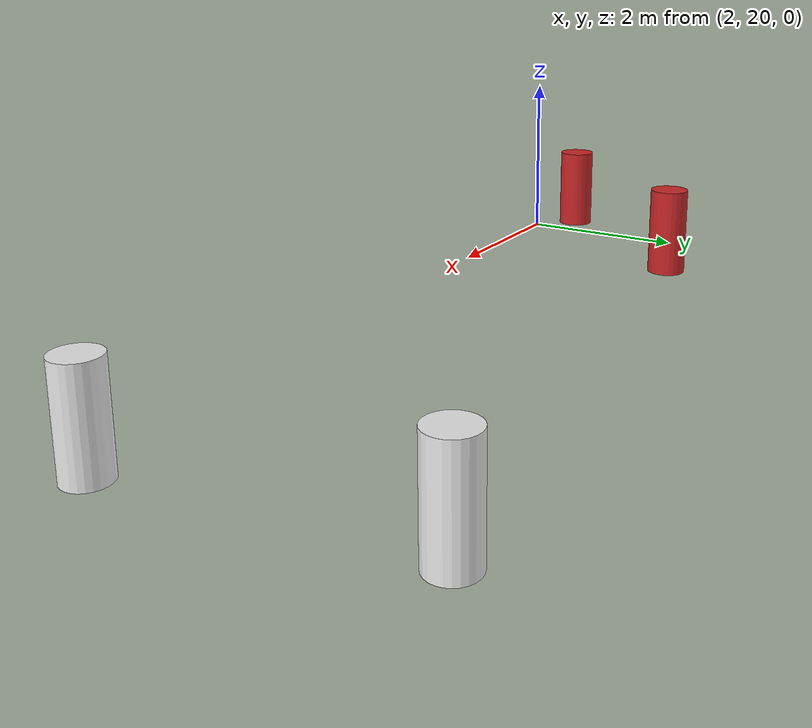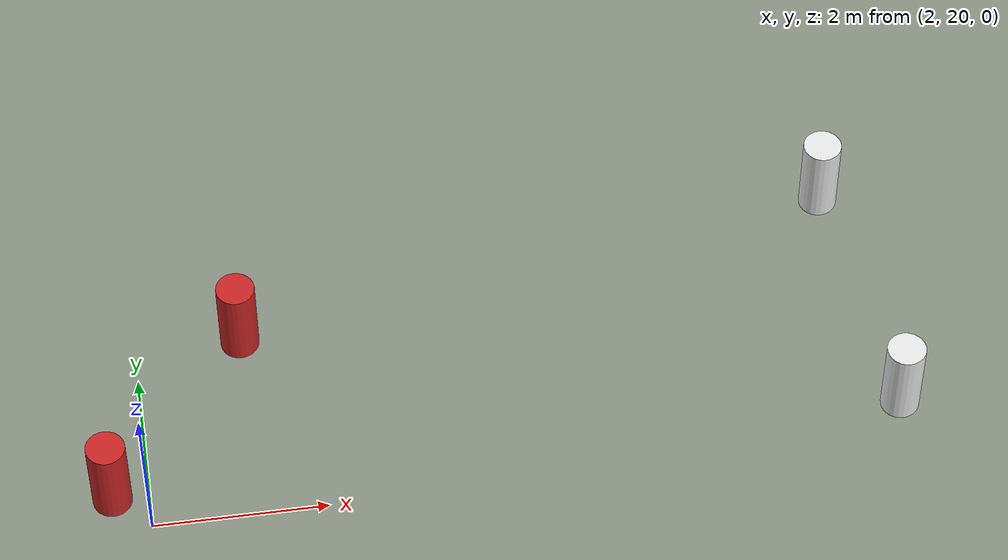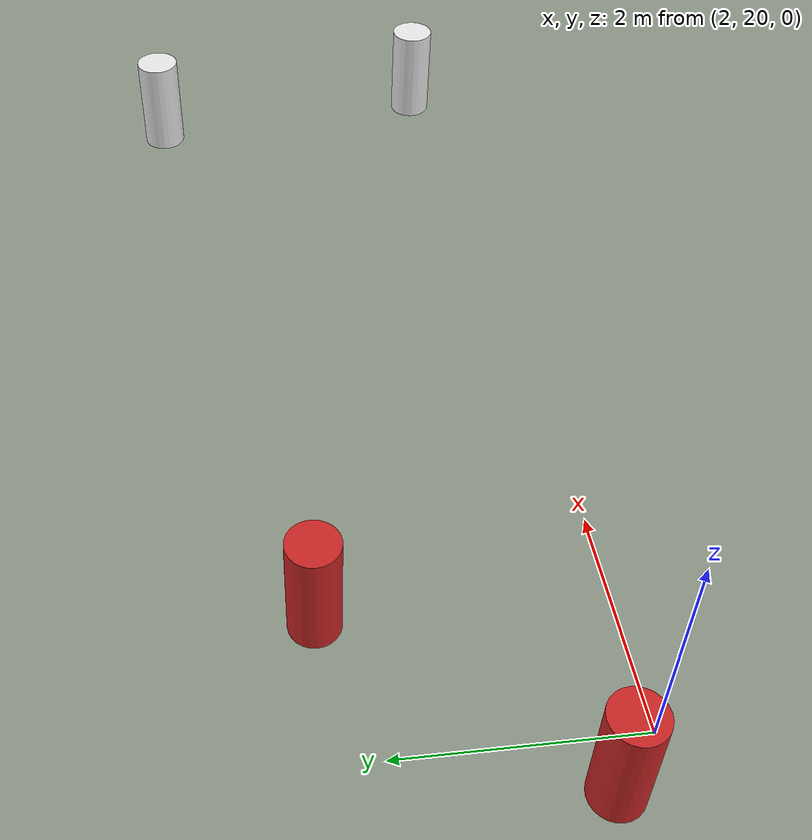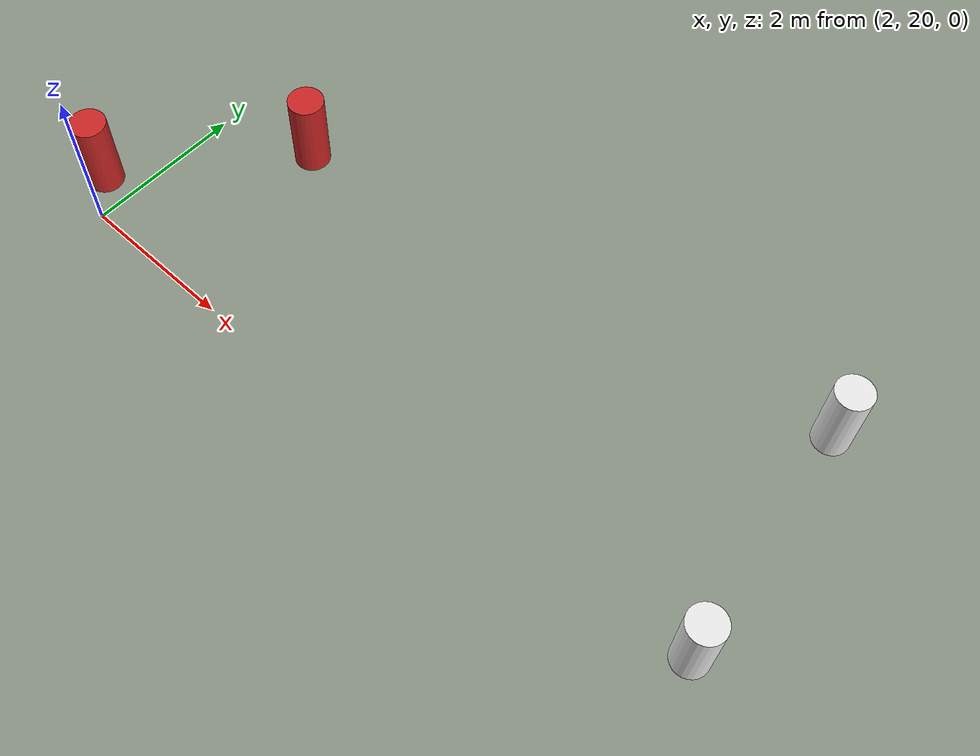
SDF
<sdf version="1.7">
 <world name="IGVC AutoNav">
  <model name="barrel_24">
   <link name="link">
    <inertial>
     <mass>1</mass>
     <inertia><ixx>0.145833</ixx><ixy>0</ixy><ixz>0</ixz><iyy>0.145833</iyy><iyz>0</iyz><izz>0.125</izz></inertia>
    </inertial>
    <visual name="visual">
     <geometry><cylinder><radius>0.222916</radius><length>1.03567</length></cylinder></geometry>
     <material>
      <script><name>Gazebo/White</name><uri>file://media/materials/scripts/gazebo.material</uri></script>
      <shader type="pixel"/>
     </material>
    </visual>
    <collision name="collision">
     <geometry><cylinder><radius>0.222916</radius><length>1.03567</length></cylinder></geometry>
     <surface>
      <friction>
       <ode><mu>1</mu><mu2>1</mu2><fdir1>0 0 0</fdir1><slip1>0</slip1><slip2>0</slip2></ode>
       <torsional>
        <coefficient>1</coefficient>
        <patch_radius>0</patch_radius>
        <surface_radius>0</surface_radius>
        <use_patch_radius>1</use_patch_radius>
        <ode><slip>0</slip></ode>
       </torsional>
      </friction>
      <bounce><restitution_coefficient>0</restitution_coefficient><threshold>1e+06</threshold></bounce>
      <contact>
       <collide_without_contact>0</collide_without_contact>
       <collide_without_contact_bitmask>1</collide_without_contact_bitmask>
       <collide_bitmask>1</collide_bitmask>
       <ode>
        <soft_cfm>0</soft_cfm>
        <soft_erp>0.2</soft_erp>
        <kp>1e+13</kp>
        <kd>1</kd>
        <max_vel>0.01</max_vel>
        <min_depth>0</min_depth>
       </ode>
       <bullet>
        <split_impulse>1</split_impulse>
        <split_impulse_penetration_threshold>-0.01</split_impulse_penetration_threshold>
        <soft_cfm>0</soft_cfm>
        <soft_erp>0.2</soft_erp>
        <kp>1e+13</kp>
        <kd>1</kd>
       </bullet>
      </contact>
     </surface>
    </collision>
   </link>
   <static>0</static>
   <pose>10.2563 23.5261 0.517834 1e-06 -0 0.000161</pose>
  </model>
  <model name="barrel_26">
   <link name="link">
    <inertial>
     <mass>1</mass>
     <inertia><ixx>0.145833</ixx><ixy>0</ixy><ixz>0</ixz><iyy>0.145833</iyy><iyz>0</iyz><izz>0.125</izz></inertia>
    </inertial>
    <visual name="visual">
     <geometry><cylinder><radius>0.222916</radius><length>1.03567</length></cylinder></geometry>
     <material>
      <script><name>Gazebo/Red</name><uri>file://media/materials/scripts/gazebo.material</uri></script>
      <shader type="pixel"/>
     </material>
    </visual>
    <collision name="collision">
     <geometry><cylinder><radius>0.222916</radius><length>1.03567</length></cylinder></geometry>
     <surface>
      <friction>
       <ode><mu>1</mu><mu2>1</mu2><fdir1>0 0 0</fdir1><slip1>0</slip1><slip2>0</slip2></ode>
       <torsional>
        <coefficient>1</coefficient>
        <patch_radius>0</patch_radius>
        <surface_radius>0</surface_radius>
        <use_patch_radius>1</use_patch_radius>
        <ode><slip>0</slip></ode>
       </torsional>
      </friction>
      <bounce><restitution_coefficient>0</restitution_coefficient><threshold>1e+06</threshold></bounce>
      <contact>
       <collide_without_contact>0</collide_without_contact>
       <collide_without_contact_bitmask>1</collide_without_contact_bitmask>
       <collide_bitmask>1</collide_bitmask>
       <ode>
        <soft_cfm>0</soft_cfm>
        <soft_erp>0.2</soft_erp>
        <kp>1e+13</kp>
        <kd>1</kd>
        <max_vel>0.01</max_vel>
        <min_depth>0</min_depth>
       </ode>
       <bullet>
        <split_impulse>1</split_impulse>
        <split_impulse_penetration_threshold>-0.01</split_impulse_penetration_threshold>
        <soft_cfm>0</soft_cfm>
        <soft_erp>0.2</soft_erp>
        <kp>1e+13</kp>
        <kd>1</kd>
       </bullet>
      </contact>
     </surface>
    </collision>
   </link>
   <static>0</static>
   <pose>1.58293 20.4113 0.517835 0 -0 0.000386</pose>
  </model>
  <model name="barrel_27">
   <link name="link">
    <inertial>
     <mass>1</mass>
     <inertia><ixx>0.145833</ixx><ixy>0</ixy><ixz>0</ixz><iyy>0.145833</iyy><iyz>0</iyz><izz>0.125</izz></inertia>
    </inertial>
    <visual name="visual">
     <geometry><cylinder><radius>0.222916</radius><length>1.03567</length></cylinder></geometry>
     <material>
      <script><name>Gazebo/Red</name><uri>file://media/materials/scripts/gazebo.material</uri></script>
      <shader type="pixel"/>
     </material>
    </visual>
    <collision name="collision">
     <geometry><cylinder><radius>0.222916</radius><length>1.03567</length></cylinder></geometry>
     <surface>
      <friction>
       <ode><mu>1</mu><mu2>1</mu2><fdir1>0 0 0</fdir1><slip1>0</slip1><slip2>0</slip2></ode>
       <torsional>
        <coefficient>1</coefficient>
        <patch_radius>0</patch_radius>
        <surface_radius>0</surface_radius>
        <use_patch_radius>1</use_patch_radius>
        <ode><slip>0</slip></ode>
       </torsional>
      </friction>
      <bounce><restitution_coefficient>0</restitution_coefficient><threshold>1e+06</threshold></bounce>
      <contact>
       <collide_without_contact>0</collide_without_contact>
       <collide_without_contact_bitmask>1</collide_without_contact_bitmask>
       <collide_bitmask>1</collide_bitmask>
       <ode>
        <soft_cfm>0</soft_cfm>
        <soft_erp>0.2</soft_erp>
        <kp>1e+13</kp>
        <kd>1</kd>
        <max_vel>0.01</max_vel>
        <min_depth>0</min_depth>
       </ode>
       <bullet>
        <split_impulse>1</split_impulse>
        <split_impulse_penetration_threshold>-0.01</split_impulse_penetration_threshold>
        <soft_cfm>0</soft_cfm>
        <soft_erp>0.2</soft_erp>
        <kp>1e+13</kp>
        <kd>1</kd>
       </bullet>
      </contact>
     </surface>
    </collision>
   </link>
   <static>0</static>
   <pose>3.21879 22.403 0.517835 0 -0 0.000347</pose>
  </model>
  <model name="barrel_28">
   <link name="link">
    <inertial>
     <mass>1</mass>
     <inertia><ixx>0.145833</ixx><ixy>0</ixy><ixz>0</ixz><iyy>0.145833</iyy><iyz>0</iyz><izz>0.125</izz></inertia>
    </inertial>
    <visual name="visual">
     <geometry><cylinder><radius>0.222916</radius><length>1.03567</length></cylinder></geometry>
     <material>
      <script><name>Gazebo/White</name><uri>file://media/materials/scripts/gazebo.material</uri></script>
      <shader type="pixel"/>
     </material>
    </visual>
    <collision name="collision">
     <geometry><cylinder><radius>0.222916</radius><length>1.03567</length></cylinder></geometry>
     <surface>
      <friction>
       <ode><mu>1</mu><mu2>1</mu2><fdir1>0 0 0</fdir1><slip1>0</slip1><slip2>0</slip2></ode>
       <torsional>
        <coefficient>1</coefficient>
        <patch_radius>0</patch_radius>
        <surface_radius>0</surface_radius>
        <use_patch_radius>1</use_patch_radius>
        <ode><slip>0</slip></ode>
       </torsional>
      </friction>
      <bounce><restitution_coefficient>0</restitution_coefficient><threshold>1e+06</threshold></bounce>
      <contact>
       <collide_without_contact>0</collide_without_contact>
       <collide_without_contact_bitmask>1</collide_without_contact_bitmask>
       <collide_bitmask>1</collide_bitmask>
       <ode>
        <soft_cfm>0</soft_cfm>
        <soft_erp>0.2</soft_erp>
        <kp>1e+13</kp>
        <kd>1</kd>
        <max_vel>0.01</max_vel>
        <min_depth>0</min_depth>
       </ode>
       <bullet>
        <split_impulse>1</split_impulse>
        <split_impulse_penetration_threshold>-0.01</split_impulse_penetration_threshold>
        <soft_cfm>0</soft_cfm>
        <soft_erp>0.2</soft_erp>
        <kp>1e+13</kp>
        <kd>1</kd>
       </bullet>
      </contact>
     </surface>
    </collision>
   </link>
   <static>0</static>
   <pose>10.6368 20.4921 0.517835 0 -0 0.000329</pose>
  </model>
 </world>
</sdf>
